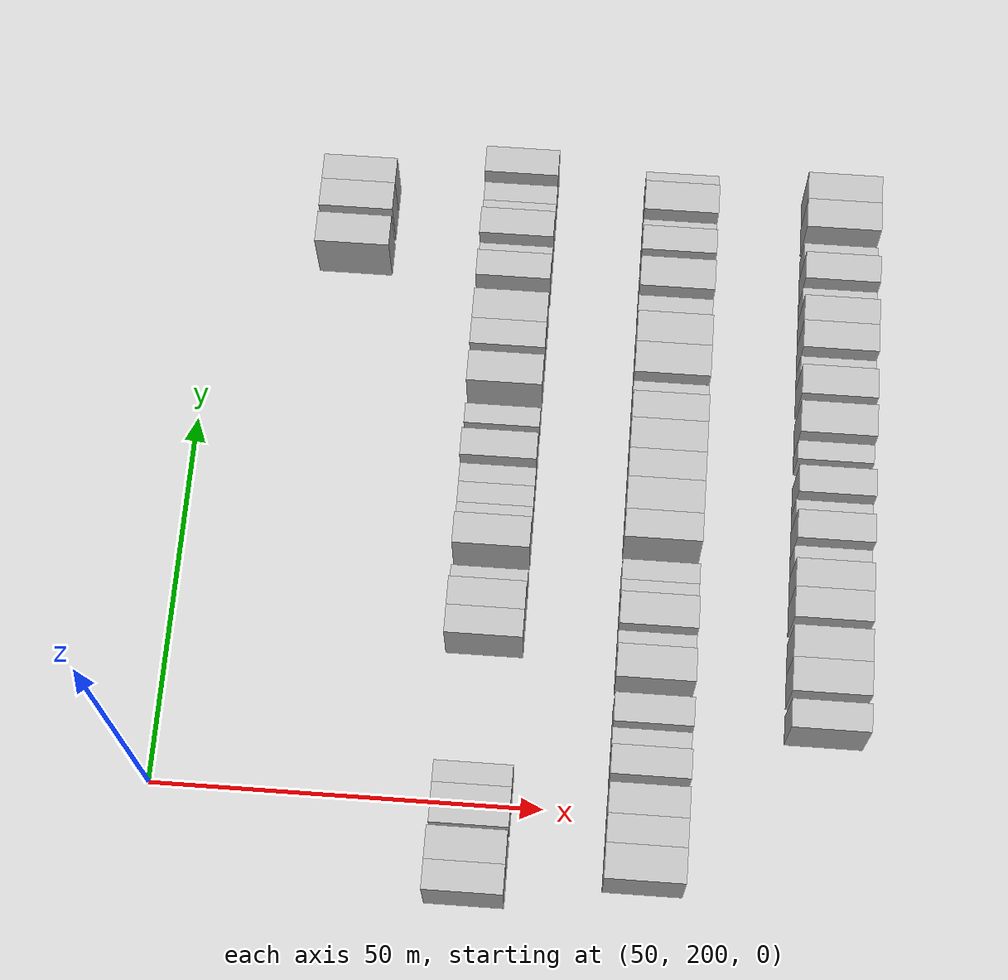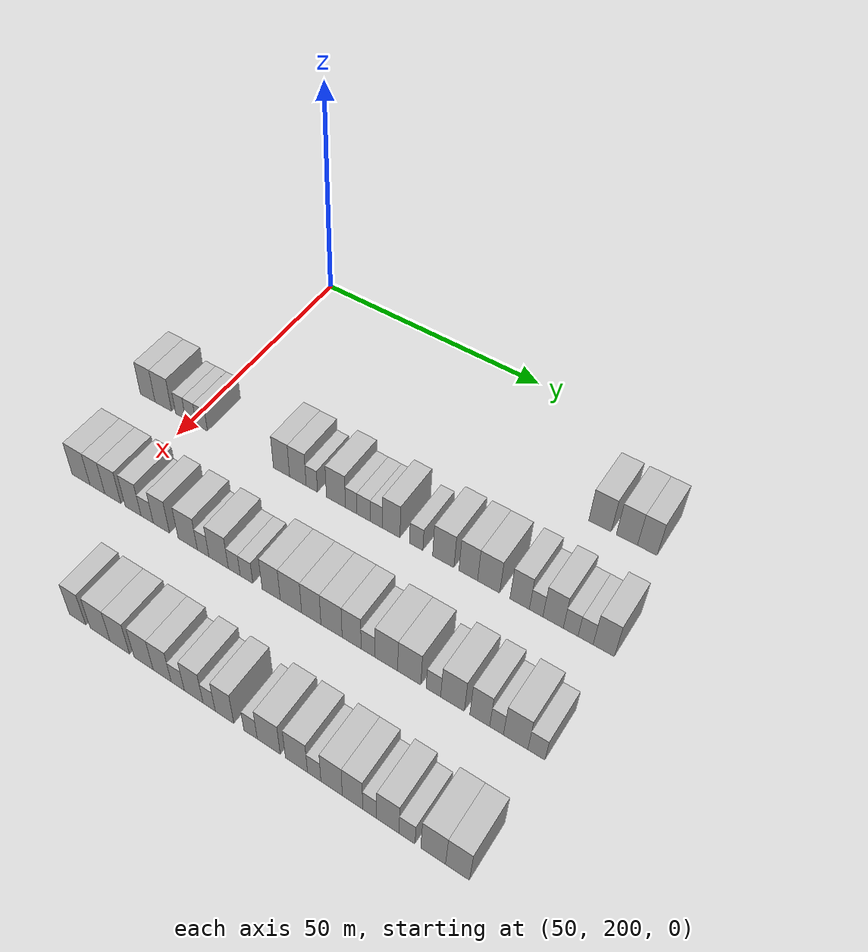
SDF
<sdf version="1.6">
 <world name="default">
  <model name="building_527">
   <static>1</static>
   <pose>69.0000 275.5378 0 0.000000 0.000000 0.000000</pose>
   <link name="link">
    <pose>0 0 4.50 0 0 0</pose>
    <collision name="collision"><geometry><box><size>10.0000 4.4116 9.0000</size></box></geometry></collision>
    <visual name="visual">
     <cast_shadows>0</cast_shadows>
     <geometry><box><size>10.0000 4.4116 9.0000</size></box></geometry>
     <material>
      <script>
       <uri>model://HANNAS_wall/materials/scripts</uri>
       <uri>model://HANNAS_wall/materials/textures</uri>
       <name>vrc/HANNAS_wall</name>
      </script>
     </material>
    </visual>
   </link>
  </model>
  <model name="building_528">
   <static>1</static>
   <pose>69.0000 280.7902 0 0.000000 0.000000 0.000000</pose>
   <link name="link">
    <pose>0 0 4.50 0 0 0</pose>
    <collision name="collision"><geometry><box><size>10.0000 4.0931 9.0000</size></box></geometry></collision>
    <visual name="visual">
     <cast_shadows>0</cast_shadows>
     <geometry><box><size>10.0000 4.0931 9.0000</size></box></geometry>
     <material>
      <script>
       <uri>model://HANNAS_wall/materials/scripts</uri>
       <uri>model://HANNAS_wall/materials/textures</uri>
       <name>vrc/HANNAS_wall</name>
      </script>
     </material>
    </visual>
   </link>
  </model>
  <model name="building_529">
   <static>1</static>
   <pose>69.0000 284.7093 0 0.000000 0.000000 0.000000</pose>
   <link name="link">
    <pose>0 0 4.50 0 0 0</pose>
    <collision name="collision"><geometry><box><size>10.0000 3.7451 9.0000</size></box></geometry></collision>
    <visual name="visual">
     <cast_shadows>0</cast_shadows>
     <geometry><box><size>10.0000 3.7451 9.0000</size></box></geometry>
     <material>
      <script>
       <uri>model://HANNAS_wall/materials/scripts</uri>
       <uri>model://HANNAS_wall/materials/textures</uri>
       <name>vrc/HANNAS_wall</name>
      </script>
     </material>
    </visual>
   </link>
  </model>
  <model name="building_706">
   <static>1</static>
   <pose>91.0000 189.1475 0 0.000000 0.000000 0.000000</pose>
   <link name="link">
    <pose>0 0 4.50 0 0 0</pose>
    <collision name="collision"><geometry><box><size>10.0000 3.7490 9.0000</size></box></geometry></collision>
    <visual name="visual">
     <cast_shadows>0</cast_shadows>
     <geometry><box><size>10.0000 3.7490 9.0000</size></box></geometry>
     <material>
      <script>
       <uri>model://HANNAS_wall/materials/scripts</uri>
       <uri>model://HANNAS_wall/materials/textures</uri>
       <name>vrc/HANNAS_wall</name>
      </script>
     </material>
    </visual>
   </link>
  </model>
  <model name="building_707">
   <static>1</static>
   <pose>91.0000 193.1131 0 0.000000 0.000000 0.000000</pose>
   <link name="link">
    <pose>0 0 4.50 0 0 0</pose>
    <collision name="collision"><geometry><box><size>10.0000 4.1822 9.0000</size></box></geometry></collision>
    <visual name="visual">
     <cast_shadows>0</cast_shadows>
     <geometry><box><size>10.0000 4.1822 9.0000</size></box></geometry>
     <material>
      <script>
       <uri>model://HANNAS_wall/materials/scripts</uri>
       <uri>model://HANNAS_wall/materials/textures</uri>
       <name>vrc/HANNAS_wall</name>
      </script>
     </material>
    </visual>
   </link>
  </model>
  <model name="building_708">
   <static>1</static>
   <pose>91.0000 197.4350 0 0.000000 0.000000 0.000000</pose>
   <link name="link">
    <pose>0 0 3.00 0 0 0</pose>
    <collision name="collision"><geometry><box><size>10.0000 2.4615 6.0000</size></box></geometry></collision>
    <visual name="visual">
     <cast_shadows>0</cast_shadows>
     <geometry><box><size>10.0000 2.4615 6.0000</size></box></geometry>
     <material>
      <script>
       <uri>model://HANNAS_wall/materials/scripts</uri>
       <uri>model://HANNAS_wall/materials/textures</uri>
       <name>vrc/HANNAS_wall</name>
      </script>
     </material>
    </visual>
   </link>
  </model>
  <model name="building_709">
   <static>1</static>
   <pose>91.0000 199.9851 0 0.000000 0.000000 0.000000</pose>
   <link name="link">
    <pose>0 0 3.00 0 0 0</pose>
    <collision name="collision"><geometry><box><size>10.0000 2.6388 6.0000</size></box></geometry></collision>
    <visual name="visual">
     <cast_shadows>0</cast_shadows>
     <geometry><box><size>10.0000 2.6388 6.0000</size></box></geometry>
     <material>
      <script>
       <uri>model://HANNAS_wall/materials/scripts</uri>
       <uri>model://HANNAS_wall/materials/textures</uri>
       <name>vrc/HANNAS_wall</name>
      </script>
     </material>
    </visual>
   </link>
  </model>
  <model name="building_710">
   <static>1</static>
   <pose>91.0000 202.6904 0 0.000000 0.000000 0.000000</pose>
   <link name="link">
    <pose>0 0 3.00 0 0 0</pose>
    <collision name="collision"><geometry><box><size>10.0000 2.7717 6.0000</size></box></geometry></collision>
    <visual name="visual">
     <cast_shadows>0</cast_shadows>
     <geometry><box><size>10.0000 2.7717 6.0000</size></box></geometry>
     <material>
      <script>
       <uri>model://HANNAS_wall/materials/scripts</uri>
       <uri>model://HANNAS_wall/materials/textures</uri>
       <name>vrc/HANNAS_wall</name>
      </script>
     </material>
    </visual>
   </link>
  </model>
  <model name="building_711">
   <static>1</static>
   <pose>91.0000 221.6388 0 0.000000 0.000000 0.000000</pose>
   <link name="link">
    <pose>0 0 4.50 0 0 0</pose>
    <collision name="collision"><geometry><box><size>10.0000 3.7084 9.0000</size></box></geometry></collision>
    <visual name="visual">
     <cast_shadows>0</cast_shadows>
     <geometry><box><size>10.0000 3.7084 9.0000</size></box></geometry>
     <material>
      <script>
       <uri>model://HANNAS_wall/materials/scripts</uri>
       <uri>model://HANNAS_wall/materials/textures</uri>
       <name>vrc/HANNAS_wall</name>
      </script>
     </material>
    </visual>
   </link>
  </model>
  <model name="building_712">
   <static>1</static>
   <pose>91.0000 225.3714 0 0.000000 0.000000 0.000000</pose>
   <link name="link">
    <pose>0 0 4.50 0 0 0</pose>
    <collision name="collision"><geometry><box><size>10.0000 3.7568 9.0000</size></box></geometry></collision>
    <visual name="visual">
     <cast_shadows>0</cast_shadows>
     <geometry><box><size>10.0000 3.7568 9.0000</size></box></geometry>
     <material>
      <script>
       <uri>model://HANNAS_wall/materials/scripts</uri>
       <uri>model://HANNAS_wall/materials/textures</uri>
       <name>vrc/HANNAS_wall</name>
      </script>
     </material>
    </visual>
   </link>
  </model>
  <model name="building_713">
   <static>1</static>
   <pose>91.0000 228.5204 0 0.000000 0.000000 0.000000</pose>
   <link name="link">
    <pose>0 0 3.00 0 0 0</pose>
    <collision name="collision"><geometry><box><size>10.0000 2.5411 6.0000</size></box></geometry></collision>
    <visual name="visual">
     <cast_shadows>0</cast_shadows>
     <geometry><box><size>10.0000 2.5411 6.0000</size></box></geometry>
     <material>
      <script>
       <uri>model://HANNAS_wall/materials/scripts</uri>
       <uri>model://HANNAS_wall/materials/textures</uri>
       <name>vrc/HANNAS_wall</name>
      </script>
     </material>
    </visual>
   </link>
  </model>
  <model name="building_714">
   <static>1</static>
   <pose>91.0000 233.8799 0 0.000000 0.000000 0.000000</pose>
   <link name="link">
    <pose>0 0 4.50 0 0 0</pose>
    <collision name="collision"><geometry><box><size>10.0000 4.1779 9.0000</size></box></geometry></collision>
    <visual name="visual">
     <cast_shadows>0</cast_shadows>
     <geometry><box><size>10.0000 4.1779 9.0000</size></box></geometry>
     <material>
      <script>
       <uri>model://HANNAS_wall/materials/scripts</uri>
       <uri>model://HANNAS_wall/materials/textures</uri>
       <name>vrc/HANNAS_wall</name>
      </script>
     </material>
    </visual>
   </link>
  </model>
  <model name="building_715">
   <static>1</static>
   <pose>91.0000 237.2148 0 0.000000 0.000000 0.000000</pose>
   <link name="link">
    <pose>0 0 3.00 0 0 0</pose>
    <collision name="collision"><geometry><box><size>10.0000 2.4920 6.0000</size></box></geometry></collision>
    <visual name="visual">
     <cast_shadows>0</cast_shadows>
     <geometry><box><size>10.0000 2.4920 6.0000</size></box></geometry>
     <material>
      <script>
       <uri>model://HANNAS_wall/materials/scripts</uri>
       <uri>model://HANNAS_wall/materials/textures</uri>
       <name>vrc/HANNAS_wall</name>
      </script>
     </material>
    </visual>
   </link>
  </model>
  <model name="building_716">
   <static>1</static>
   <pose>91.0000 239.8965 0 0.000000 0.000000 0.000000</pose>
   <link name="link">
    <pose>0 0 3.00 0 0 0</pose>
    <collision name="collision"><geometry><box><size>10.0000 2.8712 6.0000</size></box></geometry></collision>
    <visual name="visual">
     <cast_shadows>0</cast_shadows>
     <geometry><box><size>10.0000 2.8712 6.0000</size></box></geometry>
     <material>
      <script>
       <uri>model://HANNAS_wall/materials/scripts</uri>
       <uri>model://HANNAS_wall/materials/textures</uri>
       <name>vrc/HANNAS_wall</name>
      </script>
     </material>
    </visual>
   </link>
  </model>
  <model name="building_717">
   <static>1</static>
   <pose>91.0000 242.6253 0 0.000000 0.000000 0.000000</pose>
   <link name="link">
    <pose>0 0 3.00 0 0 0</pose>
    <collision name="collision"><geometry><box><size>10.0000 2.5864 6.0000</size></box></geometry></collision>
    <visual name="visual">
     <cast_shadows>0</cast_shadows>
     <geometry><box><size>10.0000 2.5864 6.0000</size></box></geometry>
     <material>
      <script>
       <uri>model://HANNAS_wall/materials/scripts</uri>
       <uri>model://HANNAS_wall/materials/textures</uri>
       <name>vrc/HANNAS_wall</name>
      </script>
     </material>
    </visual>
   </link>
  </model>
  <model name="building_718">
   <static>1</static>
   <pose>91.0000 245.7871 0 0.000000 0.000000 0.000000</pose>
   <link name="link">
    <pose>0 0 4.50 0 0 0</pose>
    <collision name="collision"><geometry><box><size>10.0000 3.7373 9.0000</size></box></geometry></collision>
    <visual name="visual">
     <cast_shadows>0</cast_shadows>
     <geometry><box><size>10.0000 3.7373 9.0000</size></box></geometry>
     <material>
      <script>
       <uri>model://HANNAS_wall/materials/scripts</uri>
       <uri>model://HANNAS_wall/materials/textures</uri>
       <name>vrc/HANNAS_wall</name>
      </script>
     </material>
    </visual>
   </link>
  </model>
  <model name="building_719">
   <static>1</static>
   <pose>91.0000 251.0495 0 0.000000 0.000000 0.000000</pose>
   <link name="link">
    <pose>0 0 3.00 0 0 0</pose>
    <collision name="collision"><geometry><box><size>10.0000 2.7875 6.0000</size></box></geometry></collision>
    <visual name="visual">
     <cast_shadows>0</cast_shadows>
     <geometry><box><size>10.0000 2.7875 6.0000</size></box></geometry>
     <material>
      <script>
       <uri>model://HANNAS_wall/materials/scripts</uri>
       <uri>model://HANNAS_wall/materials/textures</uri>
       <name>vrc/HANNAS_wall</name>
      </script>
     </material>
    </visual>
   </link>
  </model>
  <model name="building_720">
   <static>1</static>
   <pose>91.0000 256.6161 0 0.000000 0.000000 0.000000</pose>
   <link name="link">
    <pose>0 0 4.50 0 0 0</pose>
    <collision name="collision"><geometry><box><size>10.0000 4.3456 9.0000</size></box></geometry></collision>
    <visual name="visual">
     <cast_shadows>0</cast_shadows>
     <geometry><box><size>10.0000 4.3456 9.0000</size></box></geometry>
     <material>
      <script>
       <uri>model://HANNAS_wall/materials/scripts</uri>
       <uri>model://HANNAS_wall/materials/textures</uri>
       <name>vrc/HANNAS_wall</name>
      </script>
     </material>
    </visual>
   </link>
  </model>
  <model name="building_721">
   <static>1</static>
   <pose>91.0000 261.6494 0 0.000000 0.000000 0.000000</pose>
   <link name="link">
    <pose>0 0 4.50 0 0 0</pose>
    <collision name="collision"><geometry><box><size>10.0000 3.7211 9.0000</size></box></geometry></collision>
    <visual name="visual">
     <cast_shadows>0</cast_shadows>
     <geometry><box><size>10.0000 3.7211 9.0000</size></box></geometry>
     <material>
      <script>
       <uri>model://HANNAS_wall/materials/scripts</uri>
       <uri>model://HANNAS_wall/materials/textures</uri>
       <name>vrc/HANNAS_wall</name>
      </script>
     </material>
    </visual>
   </link>
  </model>
  <model name="building_722">
   <static>1</static>
   <pose>91.0000 265.6892 0 0.000000 0.000000 0.000000</pose>
   <link name="link">
    <pose>0 0 4.50 0 0 0</pose>
    <collision name="collision"><geometry><box><size>10.0000 4.3586 9.0000</size></box></geometry></collision>
    <visual name="visual">
     <cast_shadows>0</cast_shadows>
     <geometry><box><size>10.0000 4.3586 9.0000</size></box></geometry>
     <material>
      <script>
       <uri>model://HANNAS_wall/materials/scripts</uri>
       <uri>model://HANNAS_wall/materials/textures</uri>
       <name>vrc/HANNAS_wall</name>
      </script>
     </material>
    </visual>
   </link>
  </model>
  <model name="building_723">
   <static>1</static>
   <pose>91.0000 271.7314 0 0.000000 0.000000 0.000000</pose>
   <link name="link">
    <pose>0 0 4.50 0 0 0</pose>
    <collision name="collision"><geometry><box><size>10.0000 3.7258 9.0000</size></box></geometry></collision>
    <visual name="visual">
     <cast_shadows>0</cast_shadows>
     <geometry><box><size>10.0000 3.7258 9.0000</size></box></geometry>
     <material>
      <script>
       <uri>model://HANNAS_wall/materials/scripts</uri>
       <uri>model://HANNAS_wall/materials/textures</uri>
       <name>vrc/HANNAS_wall</name>
      </script>
     </material>
    </visual>
   </link>
  </model>
  <model name="building_724">
   <static>1</static>
   <pose>91.0000 274.8843 0 0.000000 0.000000 0.000000</pose>
   <link name="link">
    <pose>0 0 3.00 0 0 0</pose>
    <collision name="collision"><geometry><box><size>10.0000 2.5799 6.0000</size></box></geometry></collision>
    <visual name="visual">
     <cast_shadows>0</cast_shadows>
     <geometry><box><size>10.0000 2.5799 6.0000</size></box></geometry>
     <material>
      <script>
       <uri>model://HANNAS_wall/materials/scripts</uri>
       <uri>model://HANNAS_wall/materials/textures</uri>
       <name>vrc/HANNAS_wall</name>
      </script>
     </material>
    </visual>
   </link>
  </model>
  <model name="building_725">
   <static>1</static>
   <pose>91.0000 278.0934 0 0.000000 0.000000 0.000000</pose>
   <link name="link">
    <pose>0 0 4.50 0 0 0</pose>
    <collision name="collision"><geometry><box><size>10.0000 3.8384 9.0000</size></box></geometry></collision>
    <visual name="visual">
     <cast_shadows>0</cast_shadows>
     <geometry><box><size>10.0000 3.8384 9.0000</size></box></geometry>
     <material>
      <script>
       <uri>model://HANNAS_wall/materials/scripts</uri>
       <uri>model://HANNAS_wall/materials/textures</uri>
       <name>vrc/HANNAS_wall</name>
      </script>
     </material>
    </visual>
   </link>
  </model>
  <model name="building_726">
   <static>1</static>
   <pose>91.0000 281.3733 0 0.000000 0.000000 0.000000</pose>
   <link name="link">
    <pose>0 0 3.00 0 0 0</pose>
    <collision name="collision"><geometry><box><size>10.0000 2.7214 6.0000</size></box></geometry></collision>
    <visual name="visual">
     <cast_shadows>0</cast_shadows>
     <geometry><box><size>10.0000 2.7214 6.0000</size></box></geometry>
     <material>
      <script>
       <uri>model://HANNAS_wall/materials/scripts</uri>
       <uri>model://HANNAS_wall/materials/textures</uri>
       <name>vrc/HANNAS_wall</name>
      </script>
     </material>
    </visual>
   </link>
  </model>
  <model name="building_727">
   <static>1</static>
   <pose>91.0000 284.1199 0 0.000000 0.000000 0.000000</pose>
   <link name="link">
    <pose>0 0 3.00 0 0 0</pose>
    <collision name="collision"><geometry><box><size>10.0000 2.7719 6.0000</size></box></geometry></collision>
    <visual name="visual">
     <cast_shadows>0</cast_shadows>
     <geometry><box><size>10.0000 2.7719 6.0000</size></box></geometry>
     <material>
      <script>
       <uri>model://HANNAS_wall/materials/scripts</uri>
       <uri>model://HANNAS_wall/materials/textures</uri>
       <name>vrc/HANNAS_wall</name>
      </script>
     </material>
    </visual>
   </link>
  </model>
  <model name="building_728">
   <static>1</static>
   <pose>91.0000 287.4488 0 0.000000 0.000000 0.000000</pose>
   <link name="link">
    <pose>0 0 4.50 0 0 0</pose>
    <collision name="collision"><geometry><box><size>10.0000 3.8859 9.0000</size></box></geometry></collision>
    <visual name="visual">
     <cast_shadows>0</cast_shadows>
     <geometry><box><size>10.0000 3.8859 9.0000</size></box></geometry>
     <material>
      <script>
       <uri>model://HANNAS_wall/materials/scripts</uri>
       <uri>model://HANNAS_wall/materials/textures</uri>
       <name>vrc/HANNAS_wall</name>
      </script>
     </material>
    </visual>
   </link>
  </model>
  <model name="building_898">
   <static>1</static>
   <pose>113.0000 192.4173 0 0.000000 0.000000 0.000000</pose>
   <link name="link">
    <pose>0 0 4.50 0 0 0</pose>
    <collision name="collision"><geometry><box><size>10.0000 4.4403 9.0000</size></box></geometry></collision>
    <visual name="visual">
     <cast_shadows>0</cast_shadows>
     <geometry><box><size>10.0000 4.4403 9.0000</size></box></geometry>
     <material>
      <script>
       <uri>model://HANNAS_wall/materials/scripts</uri>
       <uri>model://HANNAS_wall/materials/textures</uri>
       <name>vrc/HANNAS_wall</name>
      </script>
     </material>
    </visual>
   </link>
  </model>
  <model name="building_899">
   <static>1</static>
   <pose>113.0000 196.4617 0 0.000000 0.000000 0.000000</pose>
   <link name="link">
    <pose>0 0 4.50 0 0 0</pose>
    <collision name="collision"><geometry><box><size>10.0000 3.6485 9.0000</size></box></geometry></collision>
    <visual name="visual">
     <cast_shadows>0</cast_shadows>
     <geometry><box><size>10.0000 3.6485 9.0000</size></box></geometry>
     <material>
      <script>
       <uri>model://HANNAS_wall/materials/scripts</uri>
       <uri>model://HANNAS_wall/materials/textures</uri>
       <name>vrc/HANNAS_wall</name>
      </script>
     </material>
    </visual>
   </link>
  </model>
  <model name="building_900">
   <static>1</static>
   <pose>113.0000 200.2338 0 0.000000 0.000000 0.000000</pose>
   <link name="link">
    <pose>0 0 4.50 0 0 0</pose>
    <collision name="collision"><geometry><box><size>10.0000 3.8956 9.0000</size></box></geometry></collision>
    <visual name="visual">
     <cast_shadows>0</cast_shadows>
     <geometry><box><size>10.0000 3.8956 9.0000</size></box></geometry>
     <material>
      <script>
       <uri>model://HANNAS_wall/materials/scripts</uri>
       <uri>model://HANNAS_wall/materials/textures</uri>
       <name>vrc/HANNAS_wall</name>
      </script>
     </material>
    </visual>
   </link>
  </model>
  <model name="building_901">
   <static>1</static>
   <pose>113.0000 205.0677 0 0.000000 0.000000 0.000000</pose>
   <link name="link">
    <pose>0 0 4.50 0 0 0</pose>
    <collision name="collision"><geometry><box><size>10.0000 3.7723 9.0000</size></box></geometry></collision>
    <visual name="visual">
     <cast_shadows>0</cast_shadows>
     <geometry><box><size>10.0000 3.7723 9.0000</size></box></geometry>
     <material>
      <script>
       <uri>model://HANNAS_wall/materials/scripts</uri>
       <uri>model://HANNAS_wall/materials/textures</uri>
       <name>vrc/HANNAS_wall</name>
      </script>
     </material>
    </visual>
   </link>
  </model>
  <model name="building_902">
   <static>1</static>
   <pose>113.0000 208.4000 0 0.000000 0.000000 0.000000</pose>
   <link name="link">
    <pose>0 0 3.00 0 0 0</pose>
    <collision name="collision"><geometry><box><size>10.0000 2.8922 6.0000</size></box></geometry></collision>
    <visual name="visual">
     <cast_shadows>0</cast_shadows>
     <geometry><box><size>10.0000 2.8922 6.0000</size></box></geometry>
     <material>
      <script>
       <uri>model://HANNAS_wall/materials/scripts</uri>
       <uri>model://HANNAS_wall/materials/textures</uri>
       <name>vrc/HANNAS_wall</name>
      </script>
     </material>
    </visual>
   </link>
  </model>
  <model name="building_903">
   <static>1</static>
   <pose>113.0000 211.7218 0 0.000000 0.000000 0.000000</pose>
   <link name="link">
    <pose>0 0 4.50 0 0 0</pose>
    <collision name="collision"><geometry><box><size>10.0000 3.7516 9.0000</size></box></geometry></collision>
    <visual name="visual">
     <cast_shadows>0</cast_shadows>
     <geometry><box><size>10.0000 3.7516 9.0000</size></box></geometry>
     <material>
      <script>
       <uri>model://HANNAS_wall/materials/scripts</uri>
       <uri>model://HANNAS_wall/materials/textures</uri>
       <name>vrc/HANNAS_wall</name>
      </script>
     </material>
    </visual>
   </link>
  </model>
  <model name="building_904">
   <static>1</static>
   <pose>113.0000 217.7799 0 0.000000 0.000000 0.000000</pose>
   <link name="link">
    <pose>0 0 4.50 0 0 0</pose>
    <collision name="collision"><geometry><box><size>10.0000 4.3646 9.0000</size></box></geometry></collision>
    <visual name="visual">
     <cast_shadows>0</cast_shadows>
     <geometry><box><size>10.0000 4.3646 9.0000</size></box></geometry>
     <material>
      <script>
       <uri>model://HANNAS_wall/materials/scripts</uri>
       <uri>model://HANNAS_wall/materials/textures</uri>
       <name>vrc/HANNAS_wall</name>
      </script>
     </material>
    </visual>
   </link>
  </model>
  <model name="building_905">
   <static>1</static>
   <pose>113.0000 221.2659 0 0.000000 0.000000 0.000000</pose>
   <link name="link">
    <pose>0 0 3.00 0 0 0</pose>
    <collision name="collision"><geometry><box><size>10.0000 2.6073 6.0000</size></box></geometry></collision>
    <visual name="visual">
     <cast_shadows>0</cast_shadows>
     <geometry><box><size>10.0000 2.6073 6.0000</size></box></geometry>
     <material>
      <script>
       <uri>model://HANNAS_wall/materials/scripts</uri>
       <uri>model://HANNAS_wall/materials/textures</uri>
       <name>vrc/HANNAS_wall</name>
      </script>
     </material>
    </visual>
   </link>
  </model>
  <model name="building_906">
   <static>1</static>
   <pose>113.0000 224.7156 0 0.000000 0.000000 0.000000</pose>
   <link name="link">
    <pose>0 0 4.50 0 0 0</pose>
    <collision name="collision"><geometry><box><size>10.0000 4.2922 9.0000</size></box></geometry></collision>
    <visual name="visual">
     <cast_shadows>0</cast_shadows>
     <geometry><box><size>10.0000 4.2922 9.0000</size></box></geometry>
     <material>
      <script>
       <uri>model://HANNAS_wall/materials/scripts</uri>
       <uri>model://HANNAS_wall/materials/textures</uri>
       <name>vrc/HANNAS_wall</name>
      </script>
     </material>
    </visual>
   </link>
  </model>
  <model name="building_907">
   <static>1</static>
   <pose>113.0000 228.1593 0 0.000000 0.000000 0.000000</pose>
   <link name="link">
    <pose>0 0 3.00 0 0 0</pose>
    <collision name="collision"><geometry><box><size>10.0000 2.5950 6.0000</size></box></geometry></collision>
    <visual name="visual">
     <cast_shadows>0</cast_shadows>
     <geometry><box><size>10.0000 2.5950 6.0000</size></box></geometry>
     <material>
      <script>
       <uri>model://HANNAS_wall/materials/scripts</uri>
       <uri>model://HANNAS_wall/materials/textures</uri>
       <name>vrc/HANNAS_wall</name>
      </script>
     </material>
    </visual>
   </link>
  </model>
  <model name="building_908">
   <static>1</static>
   <pose>113.0000 230.8260 0 0.000000 0.000000 0.000000</pose>
   <link name="link">
    <pose>0 0 3.00 0 0 0</pose>
    <collision name="collision"><geometry><box><size>10.0000 2.7384 6.0000</size></box></geometry></collision>
    <visual name="visual">
     <cast_shadows>0</cast_shadows>
     <geometry><box><size>10.0000 2.7384 6.0000</size></box></geometry>
     <material>
      <script>
       <uri>model://HANNAS_wall/materials/scripts</uri>
       <uri>model://HANNAS_wall/materials/textures</uri>
       <name>vrc/HANNAS_wall</name>
      </script>
     </material>
    </visual>
   </link>
  </model>
  <model name="building_909">
   <static>1</static>
   <pose>113.0000 236.1205 0 0.000000 0.000000 0.000000</pose>
   <link name="link">
    <pose>0 0 4.50 0 0 0</pose>
    <collision name="collision"><geometry><box><size>10.0000 3.8507 9.0000</size></box></geometry></collision>
    <visual name="visual">
     <cast_shadows>0</cast_shadows>
     <geometry><box><size>10.0000 3.8507 9.0000</size></box></geometry>
     <material>
      <script>
       <uri>model://HANNAS_wall/materials/scripts</uri>
       <uri>model://HANNAS_wall/materials/textures</uri>
       <name>vrc/HANNAS_wall</name>
      </script>
     </material>
    </visual>
   </link>
  </model>
  <model name="building_910">
   <static>1</static>
   <pose>113.0000 240.2820 0 0.000000 0.000000 0.000000</pose>
   <link name="link">
    <pose>0 0 4.50 0 0 0</pose>
    <collision name="collision"><geometry><box><size>10.0000 4.4724 9.0000</size></box></geometry></collision>
    <visual name="visual">
     <cast_shadows>0</cast_shadows>
     <geometry><box><size>10.0000 4.4724 9.0000</size></box></geometry>
     <material>
      <script>
       <uri>model://HANNAS_wall/materials/scripts</uri>
       <uri>model://HANNAS_wall/materials/textures</uri>
       <name>vrc/HANNAS_wall</name>
      </script>
     </material>
    </visual>
   </link>
  </model>
  <model name="building_911">
   <static>1</static>
   <pose>113.0000 244.5074 0 0.000000 0.000000 0.000000</pose>
   <link name="link">
    <pose>0 0 4.50 0 0 0</pose>
    <collision name="collision"><geometry><box><size>10.0000 3.9785 9.0000</size></box></geometry></collision>
    <visual name="visual">
     <cast_shadows>0</cast_shadows>
     <geometry><box><size>10.0000 3.9785 9.0000</size></box></geometry>
     <material>
      <script>
       <uri>model://HANNAS_wall/materials/scripts</uri>
       <uri>model://HANNAS_wall/materials/textures</uri>
       <name>vrc/HANNAS_wall</name>
      </script>
     </material>
    </visual>
   </link>
  </model>
  <model name="building_912">
   <static>1</static>
   <pose>113.0000 248.6402 0 0.000000 0.000000 0.000000</pose>
   <link name="link">
    <pose>0 0 4.50 0 0 0</pose>
    <collision name="collision"><geometry><box><size>10.0000 4.2870 9.0000</size></box></geometry></collision>
    <visual name="visual">
     <cast_shadows>0</cast_shadows>
     <geometry><box><size>10.0000 4.2870 9.0000</size></box></geometry>
     <material>
      <script>
       <uri>model://HANNAS_wall/materials/scripts</uri>
       <uri>model://HANNAS_wall/materials/textures</uri>
       <name>vrc/HANNAS_wall</name>
      </script>
     </material>
    </visual>
   </link>
  </model>
  <model name="building_913">
   <static>1</static>
   <pose>113.0000 252.6722 0 0.000000 0.000000 0.000000</pose>
   <link name="link">
    <pose>0 0 4.50 0 0 0</pose>
    <collision name="collision"><geometry><box><size>10.0000 3.7771 9.0000</size></box></geometry></collision>
    <visual name="visual">
     <cast_shadows>0</cast_shadows>
     <geometry><box><size>10.0000 3.7771 9.0000</size></box></geometry>
     <material>
      <script>
       <uri>model://HANNAS_wall/materials/scripts</uri>
       <uri>model://HANNAS_wall/materials/textures</uri>
       <name>vrc/HANNAS_wall</name>
      </script>
     </material>
    </visual>
   </link>
  </model>
  <model name="building_914">
   <static>1</static>
   <pose>113.0000 255.9112 0 0.000000 0.000000 0.000000</pose>
   <link name="link">
    <pose>0 0 3.00 0 0 0</pose>
    <collision name="collision"><geometry><box><size>10.0000 2.7007 6.0000</size></box></geometry></collision>
    <visual name="visual">
     <cast_shadows>0</cast_shadows>
     <geometry><box><size>10.0000 2.7007 6.0000</size></box></geometry>
     <material>
      <script>
       <uri>model://HANNAS_wall/materials/scripts</uri>
       <uri>model://HANNAS_wall/materials/textures</uri>
       <name>vrc/HANNAS_wall</name>
      </script>
     </material>
    </visual>
   </link>
  </model>
  <model name="building_915">
   <static>1</static>
   <pose>113.0000 259.4818 0 0.000000 0.000000 0.000000</pose>
   <link name="link">
    <pose>0 0 4.50 0 0 0</pose>
    <collision name="collision"><geometry><box><size>10.0000 4.4406 9.0000</size></box></geometry></collision>
    <visual name="visual">
     <cast_shadows>0</cast_shadows>
     <geometry><box><size>10.0000 4.4406 9.0000</size></box></geometry>
     <material>
      <script>
       <uri>model://HANNAS_wall/materials/scripts</uri>
       <uri>model://HANNAS_wall/materials/textures</uri>
       <name>vrc/HANNAS_wall</name>
      </script>
     </material>
    </visual>
   </link>
  </model>
  <model name="building_916">
   <static>1</static>
   <pose>113.0000 263.9245 0 0.000000 0.000000 0.000000</pose>
   <link name="link">
    <pose>0 0 4.50 0 0 0</pose>
    <collision name="collision"><geometry><box><size>10.0000 4.4448 9.0000</size></box></geometry></collision>
    <visual name="visual">
     <cast_shadows>0</cast_shadows>
     <geometry><box><size>10.0000 4.4448 9.0000</size></box></geometry>
     <material>
      <script>
       <uri>model://HANNAS_wall/materials/scripts</uri>
       <uri>model://HANNAS_wall/materials/textures</uri>
       <name>vrc/HANNAS_wall</name>
      </script>
     </material>
    </visual>
   </link>
  </model>
  <model name="building_917">
   <static>1</static>
   <pose>113.0000 268.5134 0 0.000000 0.000000 0.000000</pose>
   <link name="link">
    <pose>0 0 3.00 0 0 0</pose>
    <collision name="collision"><geometry><box><size>10.0000 2.7329 6.0000</size></box></geometry></collision>
    <visual name="visual">
     <cast_shadows>0</cast_shadows>
     <geometry><box><size>10.0000 2.7329 6.0000</size></box></geometry>
     <material>
      <script>
       <uri>model://HANNAS_wall/materials/scripts</uri>
       <uri>model://HANNAS_wall/materials/textures</uri>
       <name>vrc/HANNAS_wall</name>
      </script>
     </material>
    </visual>
   </link>
  </model>
  <model name="building_918">
   <static>1</static>
   <pose>113.0000 272.0757 0 0.000000 0.000000 0.000000</pose>
   <link name="link">
    <pose>0 0 4.50 0 0 0</pose>
    <collision name="collision"><geometry><box><size>10.0000 4.3919 9.0000</size></box></geometry></collision>
    <visual name="visual">
     <cast_shadows>0</cast_shadows>
     <geometry><box><size>10.0000 4.3919 9.0000</size></box></geometry>
     <material>
      <script>
       <uri>model://HANNAS_wall/materials/scripts</uri>
       <uri>model://HANNAS_wall/materials/textures</uri>
       <name>vrc/HANNAS_wall</name>
      </script>
     </material>
    </visual>
   </link>
  </model>
  <model name="building_919">
   <static>1</static>
   <pose>113.0000 277.0720 0 0.000000 0.000000 0.000000</pose>
   <link name="link">
    <pose>0 0 4.50 0 0 0</pose>
    <collision name="collision"><geometry><box><size>10.0000 3.6007 9.0000</size></box></geometry></collision>
    <visual name="visual">
     <cast_shadows>0</cast_shadows>
     <geometry><box><size>10.0000 3.6007 9.0000</size></box></geometry>
     <material>
      <script>
       <uri>model://HANNAS_wall/materials/scripts</uri>
       <uri>model://HANNAS_wall/materials/textures</uri>
       <name>vrc/HANNAS_wall</name>
      </script>
     </material>
    </visual>
   </link>
  </model>
  <model name="building_920">
   <static>1</static>
   <pose>113.0000 280.1035 0 0.000000 0.000000 0.000000</pose>
   <link name="link">
    <pose>0 0 3.00 0 0 0</pose>
    <collision name="collision"><geometry><box><size>10.0000 2.4622 6.0000</size></box></geometry></collision>
    <visual name="visual">
     <cast_shadows>0</cast_shadows>
     <geometry><box><size>10.0000 2.4622 6.0000</size></box></geometry>
     <material>
      <script>
       <uri>model://HANNAS_wall/materials/scripts</uri>
       <uri>model://HANNAS_wall/materials/textures</uri>
       <name>vrc/HANNAS_wall</name>
      </script>
     </material>
    </visual>
   </link>
  </model>
  <model name="building_921">
   <static>1</static>
   <pose>113.0000 283.4982 0 0.000000 0.000000 0.000000</pose>
   <link name="link">
    <pose>0 0 4.50 0 0 0</pose>
    <collision name="collision"><geometry><box><size>10.0000 4.3273 9.0000</size></box></geometry></collision>
    <visual name="visual">
     <cast_shadows>0</cast_shadows>
     <geometry><box><size>10.0000 4.3273 9.0000</size></box></geometry>
     <material>
      <script>
       <uri>model://HANNAS_wall/materials/scripts</uri>
       <uri>model://HANNAS_wall/materials/textures</uri>
       <name>vrc/HANNAS_wall</name>
      </script>
     </material>
    </visual>
   </link>
  </model>
  <model name="building_922">
   <static>1</static>
   <pose>113.0000 287.1587 0 0.000000 0.000000 0.000000</pose>
   <link name="link">
    <pose>0 0 3.00 0 0 0</pose>
    <collision name="collision"><geometry><box><size>10.0000 2.9936 6.0000</size></box></geometry></collision>
    <visual name="visual">
     <cast_shadows>0</cast_shadows>
     <geometry><box><size>10.0000 2.9936 6.0000</size></box></geometry>
     <material>
      <script>
       <uri>model://HANNAS_wall/materials/scripts</uri>
       <uri>model://HANNAS_wall/materials/textures</uri>
       <name>vrc/HANNAS_wall</name>
      </script>
     </material>
    </visual>
   </link>
  </model>
  <model name="building_1090">
   <static>1</static>
   <pose>135.0000 212.4964 0 0.000000 0.000000 0.000000</pose>
   <link name="link">
    <pose>0 0 4.50 0 0 0</pose>
    <collision name="collision"><geometry><box><size>10.0000 3.6977 9.0000</size></box></geometry></collision>
    <visual name="visual">
     <cast_shadows>0</cast_shadows>
     <geometry><box><size>10.0000 3.6977 9.0000</size></box></geometry>
     <material>
      <script>
       <uri>model://HANNAS_wall/materials/scripts</uri>
       <uri>model://HANNAS_wall/materials/textures</uri>
       <name>vrc/HANNAS_wall</name>
      </script>
     </material>
    </visual>
   </link>
  </model>
  <model name="building_1091">
   <static>1</static>
   <pose>135.0000 217.5645 0 0.000000 0.000000 0.000000</pose>
   <link name="link">
    <pose>0 0 4.50 0 0 0</pose>
    <collision name="collision"><geometry><box><size>10.0000 4.4385 9.0000</size></box></geometry></collision>
    <visual name="visual">
     <cast_shadows>0</cast_shadows>
     <geometry><box><size>10.0000 4.4385 9.0000</size></box></geometry>
     <material>
      <script>
       <uri>model://HANNAS_wall/materials/scripts</uri>
       <uri>model://HANNAS_wall/materials/textures</uri>
       <name>vrc/HANNAS_wall</name>
      </script>
     </material>
    </visual>
   </link>
  </model>
  <model name="building_1092">
   <static>1</static>
   <pose>135.0000 221.9014 0 0.000000 0.000000 0.000000</pose>
   <link name="link">
    <pose>0 0 4.50 0 0 0</pose>
    <collision name="collision"><geometry><box><size>10.0000 4.2352 9.0000</size></box></geometry></collision>
    <visual name="visual">
     <cast_shadows>0</cast_shadows>
     <geometry><box><size>10.0000 4.2352 9.0000</size></box></geometry>
     <material>
      <script>
       <uri>model://HANNAS_wall/materials/scripts</uri>
       <uri>model://HANNAS_wall/materials/textures</uri>
       <name>vrc/HANNAS_wall</name>
      </script>
     </material>
    </visual>
   </link>
  </model>
  <model name="building_1093">
   <static>1</static>
   <pose>135.0000 227.0537 0 0.000000 0.000000 0.000000</pose>
   <link name="link">
    <pose>0 0 4.50 0 0 0</pose>
    <collision name="collision"><geometry><box><size>10.0000 4.0693 9.0000</size></box></geometry></collision>
    <visual name="visual">
     <cast_shadows>0</cast_shadows>
     <geometry><box><size>10.0000 4.0693 9.0000</size></box></geometry>
     <material>
      <script>
       <uri>model://HANNAS_wall/materials/scripts</uri>
       <uri>model://HANNAS_wall/materials/textures</uri>
       <name>vrc/HANNAS_wall</name>
      </script>
     </material>
    </visual>
   </link>
  </model>
  <model name="building_1094">
   <static>1</static>
   <pose>135.0000 230.9932 0 0.000000 0.000000 0.000000</pose>
   <link name="link">
    <pose>0 0 4.50 0 0 0</pose>
    <collision name="collision"><geometry><box><size>10.0000 3.8097 9.0000</size></box></geometry></collision>
    <visual name="visual">
     <cast_shadows>0</cast_shadows>
     <geometry><box><size>10.0000 3.8097 9.0000</size></box></geometry>
     <material>
      <script>
       <uri>model://HANNAS_wall/materials/scripts</uri>
       <uri>model://HANNAS_wall/materials/textures</uri>
       <name>vrc/HANNAS_wall</name>
      </script>
     </material>
    </visual>
   </link>
  </model>
  <model name="building_1095">
   <static>1</static>
   <pose>135.0000 234.2639 0 0.000000 0.000000 0.000000</pose>
   <link name="link">
    <pose>0 0 3.00 0 0 0</pose>
    <collision name="collision"><geometry><box><size>10.0000 2.7317 6.0000</size></box></geometry></collision>
    <visual name="visual">
     <cast_shadows>0</cast_shadows>
     <geometry><box><size>10.0000 2.7317 6.0000</size></box></geometry>
     <material>
      <script>
       <uri>model://HANNAS_wall/materials/scripts</uri>
       <uri>model://HANNAS_wall/materials/textures</uri>
       <name>vrc/HANNAS_wall</name>
      </script>
     </material>
    </visual>
   </link>
  </model>
  <model name="building_1096">
   <static>1</static>
   <pose>135.0000 237.5576 0 0.000000 0.000000 0.000000</pose>
   <link name="link">
    <pose>0 0 4.50 0 0 0</pose>
    <collision name="collision"><geometry><box><size>10.0000 3.8559 9.0000</size></box></geometry></collision>
    <visual name="visual">
     <cast_shadows>0</cast_shadows>
     <geometry><box><size>10.0000 3.8559 9.0000</size></box></geometry>
     <material>
      <script>
       <uri>model://HANNAS_wall/materials/scripts</uri>
       <uri>model://HANNAS_wall/materials/textures</uri>
       <name>vrc/HANNAS_wall</name>
      </script>
     </material>
    </visual>
   </link>
  </model>
  <model name="building_1097">
   <static>1</static>
   <pose>135.0000 240.7176 0 0.000000 0.000000 0.000000</pose>
   <link name="link">
    <pose>0 0 3.00 0 0 0</pose>
    <collision name="collision"><geometry><box><size>10.0000 2.4641 6.0000</size></box></geometry></collision>
    <visual name="visual">
     <cast_shadows>0</cast_shadows>
     <geometry><box><size>10.0000 2.4641 6.0000</size></box></geometry>
     <material>
      <script>
       <uri>model://HANNAS_wall/materials/scripts</uri>
       <uri>model://HANNAS_wall/materials/textures</uri>
       <name>vrc/HANNAS_wall</name>
      </script>
     </material>
    </visual>
   </link>
  </model>
  <model name="building_1098">
   <static>1</static>
   <pose>135.0000 243.8110 0 0.000000 0.000000 0.000000</pose>
   <link name="link">
    <pose>0 0 4.50 0 0 0</pose>
    <collision name="collision"><geometry><box><size>10.0000 3.7228 9.0000</size></box></geometry></collision>
    <visual name="visual">
     <cast_shadows>0</cast_shadows>
     <geometry><box><size>10.0000 3.7228 9.0000</size></box></geometry>
     <material>
      <script>
       <uri>model://HANNAS_wall/materials/scripts</uri>
       <uri>model://HANNAS_wall/materials/textures</uri>
       <name>vrc/HANNAS_wall</name>
      </script>
     </material>
    </visual>
   </link>
  </model>
  <model name="building_1099">
   <static>1</static>
   <pose>135.0000 248.9878 0 0.000000 0.000000 0.000000</pose>
   <link name="link">
    <pose>0 0 3.00 0 0 0</pose>
    <collision name="collision"><geometry><box><size>10.0000 2.6308 6.0000</size></box></geometry></collision>
    <visual name="visual">
     <cast_shadows>0</cast_shadows>
     <geometry><box><size>10.0000 2.6308 6.0000</size></box></geometry>
     <material>
      <script>
       <uri>model://HANNAS_wall/materials/scripts</uri>
       <uri>model://HANNAS_wall/materials/textures</uri>
       <name>vrc/HANNAS_wall</name>
      </script>
     </material>
    </visual>
   </link>
  </model>
  <model name="building_1100">
   <static>1</static>
   <pose>135.0000 252.5203 0 0.000000 0.000000 0.000000</pose>
   <link name="link">
    <pose>0 0 4.50 0 0 0</pose>
    <collision name="collision"><geometry><box><size>10.0000 4.4341 9.0000</size></box></geometry></collision>
    <visual name="visual">
     <cast_shadows>0</cast_shadows>
     <geometry><box><size>10.0000 4.4341 9.0000</size></box></geometry>
     <material>
      <script>
       <uri>model://HANNAS_wall/materials/scripts</uri>
       <uri>model://HANNAS_wall/materials/textures</uri>
       <name>vrc/HANNAS_wall</name>
      </script>
     </material>
    </visual>
   </link>
  </model>
  <model name="building_1101">
   <static>1</static>
   <pose>135.0000 257.8198 0 0.000000 0.000000 0.000000</pose>
   <link name="link">
    <pose>0 0 4.50 0 0 0</pose>
    <collision name="collision"><geometry><box><size>10.0000 4.1649 9.0000</size></box></geometry></collision>
    <visual name="visual">
     <cast_shadows>0</cast_shadows>
     <geometry><box><size>10.0000 4.1649 9.0000</size></box></geometry>
     <material>
      <script>
       <uri>model://HANNAS_wall/materials/scripts</uri>
       <uri>model://HANNAS_wall/materials/textures</uri>
       <name>vrc/HANNAS_wall</name>
      </script>
     </material>
    </visual>
   </link>
  </model>
  <model name="building_1102">
   <static>1</static>
   <pose>135.0000 261.1585 0 0.000000 0.000000 0.000000</pose>
   <link name="link">
    <pose>0 0 3.00 0 0 0</pose>
    <collision name="collision"><geometry><box><size>10.0000 2.5124 6.0000</size></box></geometry></collision>
    <visual name="visual">
     <cast_shadows>0</cast_shadows>
     <geometry><box><size>10.0000 2.5124 6.0000</size></box></geometry>
     <material>
      <script>
       <uri>model://HANNAS_wall/materials/scripts</uri>
       <uri>model://HANNAS_wall/materials/textures</uri>
       <name>vrc/HANNAS_wall</name>
      </script>
     </material>
    </visual>
   </link>
  </model>
  <model name="building_1103">
   <static>1</static>
   <pose>135.0000 264.3826 0 0.000000 0.000000 0.000000</pose>
   <link name="link">
    <pose>0 0 4.50 0 0 0</pose>
    <collision name="collision"><geometry><box><size>10.0000 3.9358 9.0000</size></box></geometry></collision>
    <visual name="visual">
     <cast_shadows>0</cast_shadows>
     <geometry><box><size>10.0000 3.9358 9.0000</size></box></geometry>
     <material>
      <script>
       <uri>model://HANNAS_wall/materials/scripts</uri>
       <uri>model://HANNAS_wall/materials/textures</uri>
       <name>vrc/HANNAS_wall</name>
      </script>
     </material>
    </visual>
   </link>
  </model>
  <model name="building_1104">
   <static>1</static>
   <pose>135.0000 268.1881 0 0.000000 0.000000 0.000000</pose>
   <link name="link">
    <pose>0 0 4.50 0 0 0</pose>
    <collision name="collision"><geometry><box><size>10.0000 3.6753 9.0000</size></box></geometry></collision>
    <visual name="visual">
     <cast_shadows>0</cast_shadows>
     <geometry><box><size>10.0000 3.6753 9.0000</size></box></geometry>
     <material>
      <script>
       <uri>model://HANNAS_wall/materials/scripts</uri>
       <uri>model://HANNAS_wall/materials/textures</uri>
       <name>vrc/HANNAS_wall</name>
      </script>
     </material>
    </visual>
   </link>
  </model>
  <model name="building_1105">
   <static>1</static>
   <pose>135.0000 271.2793 0 0.000000 0.000000 0.000000</pose>
   <link name="link">
    <pose>0 0 3.00 0 0 0</pose>
    <collision name="collision"><geometry><box><size>10.0000 2.5072 6.0000</size></box></geometry></collision>
    <visual name="visual">
     <cast_shadows>0</cast_shadows>
     <geometry><box><size>10.0000 2.5072 6.0000</size></box></geometry>
     <material>
      <script>
       <uri>model://HANNAS_wall/materials/scripts</uri>
       <uri>model://HANNAS_wall/materials/textures</uri>
       <name>vrc/HANNAS_wall</name>
      </script>
     </material>
    </visual>
   </link>
  </model>
  <model name="building_1106">
   <static>1</static>
   <pose>135.0000 274.5002 0 0.000000 0.000000 0.000000</pose>
   <link name="link">
    <pose>0 0 4.50 0 0 0</pose>
    <collision name="collision"><geometry><box><size>10.0000 3.9344 9.0000</size></box></geometry></collision>
    <visual name="visual">
     <cast_shadows>0</cast_shadows>
     <geometry><box><size>10.0000 3.9344 9.0000</size></box></geometry>
     <material>
      <script>
       <uri>model://HANNAS_wall/materials/scripts</uri>
       <uri>model://HANNAS_wall/materials/textures</uri>
       <name>vrc/HANNAS_wall</name>
      </script>
     </material>
    </visual>
   </link>
  </model>
  <model name="building_1107">
   <static>1</static>
   <pose>135.0000 277.8667 0 0.000000 0.000000 0.000000</pose>
   <link name="link">
    <pose>0 0 3.00 0 0 0</pose>
    <collision name="collision"><geometry><box><size>10.0000 2.7985 6.0000</size></box></geometry></collision>
    <visual name="visual">
     <cast_shadows>0</cast_shadows>
     <geometry><box><size>10.0000 2.7985 6.0000</size></box></geometry>
     <material>
      <script>
       <uri>model://HANNAS_wall/materials/scripts</uri>
       <uri>model://HANNAS_wall/materials/textures</uri>
       <name>vrc/HANNAS_wall</name>
      </script>
     </material>
    </visual>
   </link>
  </model>
  <model name="building_1108">
   <static>1</static>
   <pose>135.0000 282.3841 0 0.000000 0.000000 0.000000</pose>
   <link name="link">
    <pose>0 0 4.50 0 0 0</pose>
    <collision name="collision"><geometry><box><size>10.0000 4.2363 9.0000</size></box></geometry></collision>
    <visual name="visual">
     <cast_shadows>0</cast_shadows>
     <geometry><box><size>10.0000 4.2363 9.0000</size></box></geometry>
     <material>
      <script>
       <uri>model://HANNAS_wall/materials/scripts</uri>
       <uri>model://HANNAS_wall/materials/textures</uri>
       <name>vrc/HANNAS_wall</name>
      </script>
     </material>
    </visual>
   </link>
  </model>
  <model name="building_1109">
   <static>1</static>
   <pose>135.0000 286.5138 0 0.000000 0.000000 0.000000</pose>
   <link name="link">
    <pose>0 0 4.50 0 0 0</pose>
    <collision name="collision"><geometry><box><size>10.0000 4.0232 9.0000</size></box></geometry></collision>
    <visual name="visual">
     <cast_shadows>0</cast_shadows>
     <geometry><box><size>10.0000 4.0232 9.0000</size></box></geometry>
     <material>
      <script>
       <uri>model://HANNAS_wall/materials/scripts</uri>
       <uri>model://HANNAS_wall/materials/textures</uri>
       <name>vrc/HANNAS_wall</name>
      </script>
     </material>
    </visual>
   </link>
  </model>
 </world>
</sdf>
